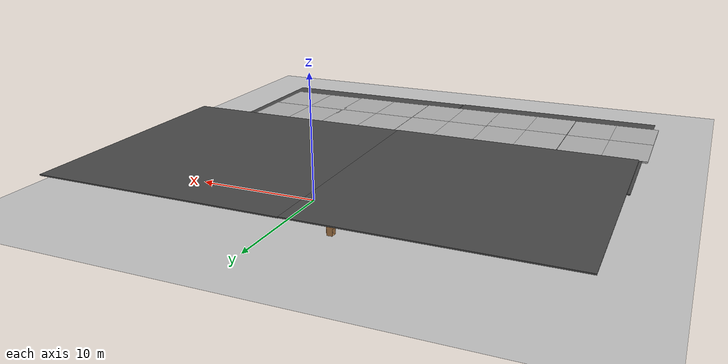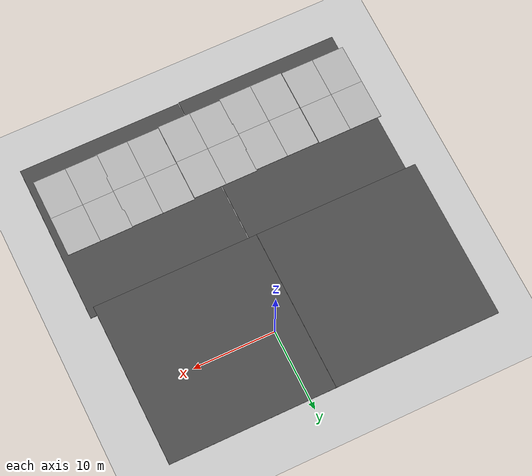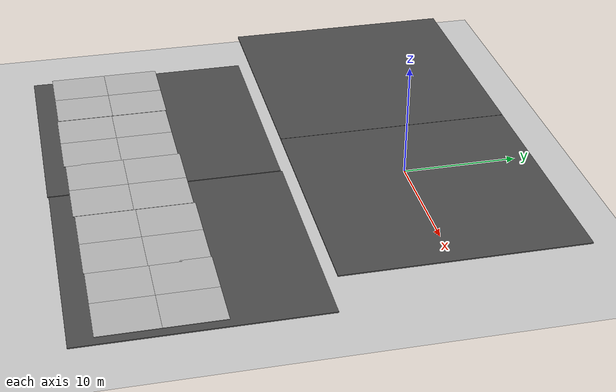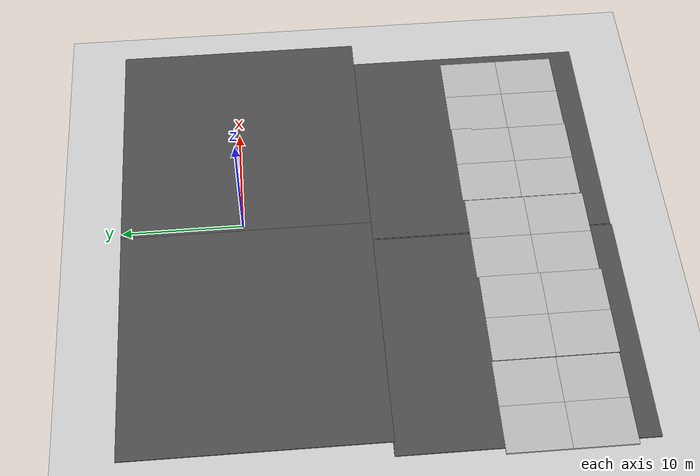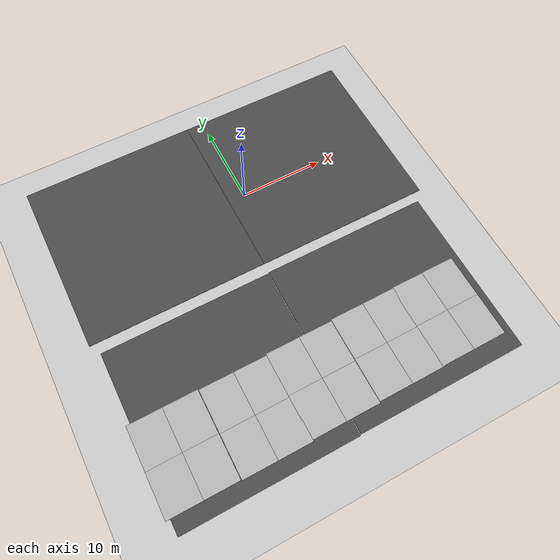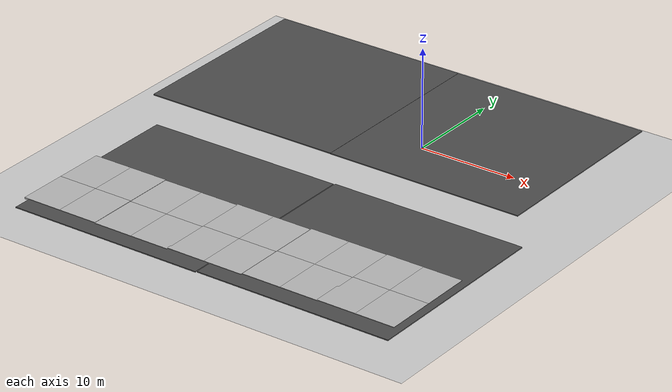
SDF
<sdf version="1.6">
 <world name="default">
  <light name="sun" type="directional">
   <pose>0 0 10 0 -0 0</pose>
   <diffuse>0.8 0.8 0.8 1</diffuse>
   <specular>0.2 0.2 0.2 1</specular>
   <attenuation>
    <range>1000</range>
    <constant>0.9</constant>
    <linear>0.01</linear>
    <quadratic>0.001</quadratic>
   </attenuation>
   <direction>-0.5 0.1 -0.9</direction>
  </light>
  <gravity>0 0 -9.8</gravity>
  <magnetic_field>6e-06 2.3e-05 -4.2e-05</magnetic_field>
  <atmosphere type="adiabatic"/>
  <physics name="default_physics" default="0" type="ode">
   <max_step_size>0.001</max_step_size>
   <real_time_factor>1</real_time_factor>
   <real_time_update_rate>1000</real_time_update_rate>
  </physics>
  <scene><ambient>1 1 1 1</ambient><background>0.7 0.7 0.7 1</background><shadows>1</shadows></scene>
  <spherical_coordinates>
   <surface_model>EARTH_WGS84</surface_model>
   <latitude_deg>0</latitude_deg>
   <longitude_deg>0</longitude_deg>
   <elevation>0</elevation>
   <heading_deg>0</heading_deg>
  </spherical_coordinates>
  <model name="ground_plane">
   <static>1</static>
   <link name="link">
    <collision name="collision">
     <geometry><plane><normal>0 0 1</normal><size>100 100</size></plane></geometry>
     <surface><friction><ode><mu>100</mu><mu2>50</mu2></ode></friction></surface>
    </collision>
    <visual name="visual">
     <cast_shadows>0</cast_shadows>
     <geometry><plane><normal>0 0 1</normal><size>100 100</size></plane></geometry>
     <material>
      <script><uri>file://media/materials/scripts/gazebo.material</uri><name>Gazebo/Grey</name></script>
     </material>
    </visual>
   </link>
   <pose>0.554406 1.95108 0 0 -0 0</pose>
  </model>
  <model name="table">
   <static>1</static>
   <link name="link">
    <collision name="surface">
     <pose>0 0 1 0 -0 0</pose>
     <geometry><box><size>1.5 0.8 0.03</size></box></geometry>
     <surface><friction><ode><mu>0.6</mu><mu2>0.6</mu2></ode></friction></surface>
    </collision>
    <visual name="visual1">
     <pose>0 0 1 0 -0 0</pose>
     <geometry><box><size>1.5 0.8 0.03</size></box></geometry>
     <material>
      <script><uri>file://media/materials/scripts/gazebo.material</uri><name>Gazebo/Wood</name></script>
     </material>
    </visual>
    <collision name="front_left_leg">
     <pose>0.68 0.38 0.5 0 -0 0</pose>
     <geometry><cylinder><radius>0.02</radius><length>1</length></cylinder></geometry>
    </collision>
    <visual name="front_left_leg">
     <pose>0.68 0.38 0.5 0 -0 0</pose>
     <geometry><cylinder><radius>0.02</radius><length>1</length></cylinder></geometry>
     <material>
      <script><uri>file://media/materials/scripts/gazebo.material</uri><name>Gazebo/Grey</name></script>
     </material>
    </visual>
    <collision name="front_right_leg">
     <pose>0.68 -0.38 0.5 0 -0 0</pose>
     <geometry><cylinder><radius>0.02</radius><length>1</length></cylinder></geometry>
    </collision>
    <visual name="front_right_leg">
     <pose>0.68 -0.38 0.5 0 -0 0</pose>
     <geometry><cylinder><radius>0.02</radius><length>1</length></cylinder></geometry>
     <material>
      <script><uri>file://media/materials/scripts/gazebo.material</uri><name>Gazebo/Grey</name></script>
     </material>
    </visual>
    <collision name="back_right_leg">
     <pose>-0.68 -0.38 0.5 0 -0 0</pose>
     <geometry><cylinder><radius>0.02</radius><length>1</length></cylinder></geometry>
    </collision>
    <visual name="back_right_leg">
     <pose>-0.68 -0.38 0.5 0 -0 0</pose>
     <geometry><cylinder><radius>0.02</radius><length>1</length></cylinder></geometry>
     <material>
      <script><uri>file://media/materials/scripts/gazebo.material</uri><name>Gazebo/Grey</name></script>
     </material>
    </visual>
    <collision name="back_left_leg">
     <pose>-0.68 0.38 0.5 0 -0 0</pose>
     <geometry><cylinder><radius>0.02</radius><length>1</length></cylinder></geometry>
    </collision>
    <visual name="back_left_leg">
     <pose>-0.68 0.38 0.5 0 -0 0</pose>
     <geometry><cylinder><radius>0.02</radius><length>1</length></cylinder></geometry>
     <material>
      <script><uri>file://media/materials/scripts/gazebo.material</uri><name>Gazebo/Grey</name></script>
     </material>
    </visual>
   </link>
   <pose>0.08848 3.30206 0 0 -0 0</pose>
  </model>
  <model name="cabinet">
   <static>1</static>
   <link name="cabinet_bottom_plate">
    <inertial>
     <pose>0 0 -1 0 -0 0</pose>
     <inertia><ixx>2.05</ixx><ixy>0</ixy><ixz>0</ixz><iyy>2.05</iyy><iyz>0</iyz><izz>2.05</izz></inertia>
     <mass>25</mass>
    </inertial>
    <collision name="cabinet_bottom_plate_geom">
     <pose>0 0 0.01 0 -0 0</pose>
     <geometry><box><size>0.45 0.45 0.02</size></box></geometry>
    </collision>
    <visual name="cabinet_bottom_plate_geom_visual">
     <pose>0 0 0.01 0 -0 0</pose>
     <geometry><box><size>0.45 0.45 0.02</size></box></geometry>
     <material>
      <script><uri>file://media/materials/scripts/gazebo.material</uri><name>Gazebo/Wood</name></script>
     </material>
    </visual>
    <collision name="cabinet_bottom_plate_geom_cabinet_back_plate">
     <pose>0.235 0 0.51 0 -0 0</pose>
     <geometry><box><size>0.02 0.45 1.02</size></box></geometry>
    </collision>
    <visual name="cabinet_bottom_plate_geom_cabinet_back_plate_visual">
     <pose>0.235 0 0.51 0 -0 0</pose>
     <geometry><box><size>0.02 0.45 1.02</size></box></geometry>
     <material>
      <script><uri>file://media/materials/scripts/gazebo.material</uri><name>Gazebo/Wood</name></script>
     </material>
    </visual>
    <collision name="cabinet_bottom_plate_geom_cabinet_left_plate">
     <pose>0 0.235 0.51 0 -0 0</pose>
     <geometry><box><size>0.45 0.02 1.02</size></box></geometry>
    </collision>
    <visual name="cabinet_bottom_plate_geom_cabinet_left_plate_visual">
     <pose>0 0.235 0.51 0 -0 0</pose>
     <geometry><box><size>0.45 0.02 1.02</size></box></geometry>
     <material>
      <script><uri>file://media/materials/scripts/gazebo.material</uri><name>Gazebo/Wood</name></script>
     </material>
    </visual>
    <collision name="cabinet_bottom_plate_geom_cabinet_middle_plate">
     <pose>0 0 0.51 0 -0 0</pose>
     <geometry><box><size>0.45 0.45 0.02</size></box></geometry>
    </collision>
    <visual name="cabinet_bottom_plate_geom_cabinet_middle_plate_visual">
     <pose>0 0 0.51 0 -0 0</pose>
     <geometry><box><size>0.45 0.45 0.02</size></box></geometry>
     <material>
      <script><uri>file://media/materials/scripts/gazebo.material</uri><name>Gazebo/Wood</name></script>
     </material>
    </visual>
    <collision name="cabinet_bottom_plate_geom_cabinet_right_plate">
     <pose>0 -0.235 0.51 0 -0 0</pose>
     <geometry><box><size>0.45 0.02 1.02</size></box></geometry>
    </collision>
    <visual name="cabinet_bottom_plate_geom_cabinet_right_plate_visual">
     <pose>0 -0.235 0.51 0 -0 0</pose>
     <geometry><box><size>0.45 0.02 1.02</size></box></geometry>
     <material>
      <script><uri>file://media/materials/scripts/gazebo.material</uri><name>Gazebo/Wood</name></script>
     </material>
    </visual>
    <collision name="cabinet_bottom_plate_geom_cabinet_top_plate">
     <pose>0 0 1.01 0 -0 0</pose>
     <geometry><box><size>0.45 0.45 0.02</size></box></geometry>
    </collision>
    <visual name="cabinet_bottom_plate_geom_cabinet_top_plate_visual">
     <pose>0 0 1.01 0 -0 0</pose>
     <geometry><box><size>0.45 0.45 0.02</size></box></geometry>
     <material>
      <script><uri>file://media/materials/scripts/gazebo.material</uri><name>Gazebo/Wood</name></script>
     </material>
    </visual>
   </link>
   <pose>-4.07897 5.06428 0 0 -0 0</pose>
  </model>
  <model name="cabinet_0">
   <static>1</static>
   <link name="cabinet_bottom_plate">
    <inertial>
     <pose>0 0 -1 0 -0 0</pose>
     <inertia><ixx>2.05</ixx><ixy>0</ixy><ixz>0</ixz><iyy>2.05</iyy><iyz>0</iyz><izz>2.05</izz></inertia>
     <mass>25</mass>
    </inertial>
    <collision name="cabinet_bottom_plate_geom">
     <pose>0 0 0.01 0 -0 0</pose>
     <geometry><box><size>0.45 0.45 0.02</size></box></geometry>
    </collision>
    <visual name="cabinet_bottom_plate_geom_visual">
     <pose>0 0 0.01 0 -0 0</pose>
     <geometry><box><size>0.45 0.45 0.02</size></box></geometry>
     <material>
      <script><uri>file://media/materials/scripts/gazebo.material</uri><name>Gazebo/Wood</name></script>
     </material>
    </visual>
    <collision name="cabinet_bottom_plate_geom_cabinet_back_plate">
     <pose>0.235 0 0.51 0 -0 0</pose>
     <geometry><box><size>0.02 0.45 1.02</size></box></geometry>
    </collision>
    <visual name="cabinet_bottom_plate_geom_cabinet_back_plate_visual">
     <pose>0.235 0 0.51 0 -0 0</pose>
     <geometry><box><size>0.02 0.45 1.02</size></box></geometry>
     <material>
      <script><uri>file://media/materials/scripts/gazebo.material</uri><name>Gazebo/Wood</name></script>
     </material>
    </visual>
    <collision name="cabinet_bottom_plate_geom_cabinet_left_plate">
     <pose>0 0.235 0.51 0 -0 0</pose>
     <geometry><box><size>0.45 0.02 1.02</size></box></geometry>
    </collision>
    <visual name="cabinet_bottom_plate_geom_cabinet_left_plate_visual">
     <pose>0 0.235 0.51 0 -0 0</pose>
     <geometry><box><size>0.45 0.02 1.02</size></box></geometry>
     <material>
      <script><uri>file://media/materials/scripts/gazebo.material</uri><name>Gazebo/Wood</name></script>
     </material>
    </visual>
    <collision name="cabinet_bottom_plate_geom_cabinet_middle_plate">
     <pose>0 0 0.51 0 -0 0</pose>
     <geometry><box><size>0.45 0.45 0.02</size></box></geometry>
    </collision>
    <visual name="cabinet_bottom_plate_geom_cabinet_middle_plate_visual">
     <pose>0 0 0.51 0 -0 0</pose>
     <geometry><box><size>0.45 0.45 0.02</size></box></geometry>
     <material>
      <script><uri>file://media/materials/scripts/gazebo.material</uri><name>Gazebo/Wood</name></script>
     </material>
    </visual>
    <collision name="cabinet_bottom_plate_geom_cabinet_right_plate">
     <pose>0 -0.235 0.51 0 -0 0</pose>
     <geometry><box><size>0.45 0.02 1.02</size></box></geometry>
    </collision>
    <visual name="cabinet_bottom_plate_geom_cabinet_right_plate_visual">
     <pose>0 -0.235 0.51 0 -0 0</pose>
     <geometry><box><size>0.45 0.02 1.02</size></box></geometry>
     <material>
      <script><uri>file://media/materials/scripts/gazebo.material</uri><name>Gazebo/Wood</name></script>
     </material>
    </visual>
    <collision name="cabinet_bottom_plate_geom_cabinet_top_plate">
     <pose>0 0 1.01 0 -0 0</pose>
     <geometry><box><size>0.45 0.45 0.02</size></box></geometry>
    </collision>
    <visual name="cabinet_bottom_plate_geom_cabinet_top_plate_visual">
     <pose>0 0 1.01 0 -0 0</pose>
     <geometry><box><size>0.45 0.45 0.02</size></box></geometry>
     <material>
      <script><uri>file://media/materials/scripts/gazebo.material</uri><name>Gazebo/Wood</name></script>
     </material>
    </visual>
   </link>
   <pose>-10.3859 1.46528 0 0 -0 0</pose>
  </model>
  <model name="cabinet_1">
   <static>1</static>
   <link name="cabinet_bottom_plate">
    <inertial>
     <pose>0 0 -1 0 -0 0</pose>
     <inertia><ixx>2.05</ixx><ixy>0</ixy><ixz>0</ixz><iyy>2.05</iyy><iyz>0</iyz><izz>2.05</izz></inertia>
     <mass>25</mass>
    </inertial>
    <collision name="cabinet_bottom_plate_geom">
     <pose>0 0 0.01 0 -0 0</pose>
     <geometry><box><size>0.45 0.45 0.02</size></box></geometry>
    </collision>
    <visual name="cabinet_bottom_plate_geom_visual">
     <pose>0 0 0.01 0 -0 0</pose>
     <geometry><box><size>0.45 0.45 0.02</size></box></geometry>
     <material>
      <script><uri>file://media/materials/scripts/gazebo.material</uri><name>Gazebo/Wood</name></script>
     </material>
    </visual>
    <collision name="cabinet_bottom_plate_geom_cabinet_back_plate">
     <pose>0.235 0 0.51 0 -0 0</pose>
     <geometry><box><size>0.02 0.45 1.02</size></box></geometry>
    </collision>
    <visual name="cabinet_bottom_plate_geom_cabinet_back_plate_visual">
     <pose>0.235 0 0.51 0 -0 0</pose>
     <geometry><box><size>0.02 0.45 1.02</size></box></geometry>
     <material>
      <script><uri>file://media/materials/scripts/gazebo.material</uri><name>Gazebo/Wood</name></script>
     </material>
    </visual>
    <collision name="cabinet_bottom_plate_geom_cabinet_left_plate">
     <pose>0 0.235 0.51 0 -0 0</pose>
     <geometry><box><size>0.45 0.02 1.02</size></box></geometry>
    </collision>
    <visual name="cabinet_bottom_plate_geom_cabinet_left_plate_visual">
     <pose>0 0.235 0.51 0 -0 0</pose>
     <geometry><box><size>0.45 0.02 1.02</size></box></geometry>
     <material>
      <script><uri>file://media/materials/scripts/gazebo.material</uri><name>Gazebo/Wood</name></script>
     </material>
    </visual>
    <collision name="cabinet_bottom_plate_geom_cabinet_middle_plate">
     <pose>0 0 0.51 0 -0 0</pose>
     <geometry><box><size>0.45 0.45 0.02</size></box></geometry>
    </collision>
    <visual name="cabinet_bottom_plate_geom_cabinet_middle_plate_visual">
     <pose>0 0 0.51 0 -0 0</pose>
     <geometry><box><size>0.45 0.45 0.02</size></box></geometry>
     <material>
      <script><uri>file://media/materials/scripts/gazebo.material</uri><name>Gazebo/Wood</name></script>
     </material>
    </visual>
    <collision name="cabinet_bottom_plate_geom_cabinet_right_plate">
     <pose>0 -0.235 0.51 0 -0 0</pose>
     <geometry><box><size>0.45 0.02 1.02</size></box></geometry>
    </collision>
    <visual name="cabinet_bottom_plate_geom_cabinet_right_plate_visual">
     <pose>0 -0.235 0.51 0 -0 0</pose>
     <geometry><box><size>0.45 0.02 1.02</size></box></geometry>
     <material>
      <script><uri>file://media/materials/scripts/gazebo.material</uri><name>Gazebo/Wood</name></script>
     </material>
    </visual>
    <collision name="cabinet_bottom_plate_geom_cabinet_top_plate">
     <pose>0 0 1.01 0 -0 0</pose>
     <geometry><box><size>0.45 0.45 0.02</size></box></geometry>
    </collision>
    <visual name="cabinet_bottom_plate_geom_cabinet_top_plate_visual">
     <pose>0 0 1.01 0 -0 0</pose>
     <geometry><box><size>0.45 0.45 0.02</size></box></geometry>
     <material>
      <script><uri>file://media/materials/scripts/gazebo.material</uri><name>Gazebo/Wood</name></script>
     </material>
    </visual>
   </link>
   <pose>-5.9696 1.51927 0 0 -0 0</pose>
  </model>
  <model name="bookshelf">
   <static>1</static>
   <link name="link">
    <inertial><mass>1</mass></inertial>
    <collision name="back">
     <pose>0 0.005 0.6 0 -0 0</pose>
     <geometry><box><size>0.9 0.01 1.2</size></box></geometry>
    </collision>
    <visual name="visual1">
     <pose>0 0.005 0.6 0 -0 0</pose>
     <geometry><box><size>0.9 0.01 1.2</size></box></geometry>
     <material>
      <script><uri>file://media/materials/scripts/gazebo.material</uri><name>Gazebo/Wood</name></script>
     </material>
    </visual>
    <collision name="left_side">
     <pose>0.45 -0.195 0.6 0 -0 0</pose>
     <geometry><box><size>0.02 0.4 1.2</size></box></geometry>
    </collision>
    <visual name="visual2">
     <pose>0.45 -0.195 0.6 0 -0 0</pose>
     <geometry><box><size>0.02 0.4 1.2</size></box></geometry>
     <material>
      <script><uri>file://media/materials/scripts/gazebo.material</uri><name>Gazebo/Wood</name></script>
     </material>
    </visual>
    <collision name="right_side">
     <pose>-0.45 -0.195 0.6 0 -0 0</pose>
     <geometry><box><size>0.02 0.4 1.2</size></box></geometry>
    </collision>
    <visual name="visual3">
     <pose>-0.45 -0.195 0.6 0 -0 0</pose>
     <geometry><box><size>0.02 0.4 1.2</size></box></geometry>
     <material>
      <script><uri>file://media/materials/scripts/gazebo.material</uri><name>Gazebo/Wood</name></script>
     </material>
    </visual>
    <collision name="bottom">
     <pose>0 -0.195 0.03 0 -0 0</pose>
     <geometry><box><size>0.88 0.4 0.06</size></box></geometry>
    </collision>
    <visual name="visual4">
     <pose>0 -0.195 0.03 0 -0 0</pose>
     <geometry><box><size>0.88 0.4 0.06</size></box></geometry>
     <material>
      <script><uri>file://media/materials/scripts/gazebo.material</uri><name>Gazebo/Wood</name></script>
     </material>
    </visual>
    <collision name="top">
     <pose>0 -0.195 1.19 0 -0 0</pose>
     <geometry><box><size>0.88 0.4 0.02</size></box></geometry>
    </collision>
    <visual name="visual5">
     <pose>0 -0.195 1.19 0 -0 0</pose>
     <geometry><box><size>0.88 0.4 0.02</size></box></geometry>
     <material>
      <script><uri>file://media/materials/scripts/gazebo.material</uri><name>Gazebo/Wood</name></script>
     </material>
    </visual>
    <collision name="low_shelf">
     <pose>0 -0.195 0.43 0 -0 0</pose>
     <geometry><box><size>0.88 0.4 0.02</size></box></geometry>
    </collision>
    <visual name="visual6">
     <pose>0 -0.195 0.43 0 -0 0</pose>
     <geometry><box><size>0.88 0.4 0.02</size></box></geometry>
     <material>
      <script><uri>file://media/materials/scripts/gazebo.material</uri><name>Gazebo/Wood</name></script>
     </material>
    </visual>
    <collision name="high_shelf">
     <pose>0 -0.195 0.8 0 -0 0</pose>
     <geometry><box><size>0.88 0.4 0.02</size></box></geometry>
    </collision>
    <visual name="visual7">
     <pose>0 -0.195 0.8 0 -0 0</pose>
     <geometry><box><size>0.88 0.4 0.02</size></box></geometry>
     <material>
      <script><uri>file://media/materials/scripts/gazebo.material</uri><name>Gazebo/Wood</name></script>
     </material>
    </visual>
   </link>
   <pose>-13.6427 1.21037 0 0 -0 3.1415</pose>
  </model>
  <model name="bookshelf_0">
   <static>1</static>
   <link name="link">
    <inertial><mass>1</mass></inertial>
    <collision name="back">
     <pose>0 0.005 0.6 0 -0 0</pose>
     <geometry><box><size>0.9 0.01 1.2</size></box></geometry>
    </collision>
    <visual name="visual1">
     <pose>0 0.005 0.6 0 -0 0</pose>
     <geometry><box><size>0.9 0.01 1.2</size></box></geometry>
     <material>
      <script><uri>file://media/materials/scripts/gazebo.material</uri><name>Gazebo/Wood</name></script>
     </material>
    </visual>
    <collision name="left_side">
     <pose>0.45 -0.195 0.6 0 -0 0</pose>
     <geometry><box><size>0.02 0.4 1.2</size></box></geometry>
    </collision>
    <visual name="visual2">
     <pose>0.45 -0.195 0.6 0 -0 0</pose>
     <geometry><box><size>0.02 0.4 1.2</size></box></geometry>
     <material>
      <script><uri>file://media/materials/scripts/gazebo.material</uri><name>Gazebo/Wood</name></script>
     </material>
    </visual>
    <collision name="right_side">
     <pose>-0.45 -0.195 0.6 0 -0 0</pose>
     <geometry><box><size>0.02 0.4 1.2</size></box></geometry>
    </collision>
    <visual name="visual3">
     <pose>-0.45 -0.195 0.6 0 -0 0</pose>
     <geometry><box><size>0.02 0.4 1.2</size></box></geometry>
     <material>
      <script><uri>file://media/materials/scripts/gazebo.material</uri><name>Gazebo/Wood</name></script>
     </material>
    </visual>
    <collision name="bottom">
     <pose>0 -0.195 0.03 0 -0 0</pose>
     <geometry><box><size>0.88 0.4 0.06</size></box></geometry>
    </collision>
    <visual name="visual4">
     <pose>0 -0.195 0.03 0 -0 0</pose>
     <geometry><box><size>0.88 0.4 0.06</size></box></geometry>
     <material>
      <script><uri>file://media/materials/scripts/gazebo.material</uri><name>Gazebo/Wood</name></script>
     </material>
    </visual>
    <collision name="top">
     <pose>0 -0.195 1.19 0 -0 0</pose>
     <geometry><box><size>0.88 0.4 0.02</size></box></geometry>
    </collision>
    <visual name="visual5">
     <pose>0 -0.195 1.19 0 -0 0</pose>
     <geometry><box><size>0.88 0.4 0.02</size></box></geometry>
     <material>
      <script><uri>file://media/materials/scripts/gazebo.material</uri><name>Gazebo/Wood</name></script>
     </material>
    </visual>
    <collision name="low_shelf">
     <pose>0 -0.195 0.43 0 -0 0</pose>
     <geometry><box><size>0.88 0.4 0.02</size></box></geometry>
    </collision>
    <visual name="visual6">
     <pose>0 -0.195 0.43 0 -0 0</pose>
     <geometry><box><size>0.88 0.4 0.02</size></box></geometry>
     <material>
      <script><uri>file://media/materials/scripts/gazebo.material</uri><name>Gazebo/Wood</name></script>
     </material>
    </visual>
    <collision name="high_shelf">
     <pose>0 -0.195 0.8 0 -0 0</pose>
     <geometry><box><size>0.88 0.4 0.02</size></box></geometry>
    </collision>
    <visual name="visual7">
     <pose>0 -0.195 0.8 0 -0 0</pose>
     <geometry><box><size>0.88 0.4 0.02</size></box></geometry>
     <material>
      <script><uri>file://media/materials/scripts/gazebo.material</uri><name>Gazebo/Wood</name></script>
     </material>
    </visual>
   </link>
   <pose>-14.562 1.20759 0 0 -0 3.1415</pose>
  </model>
  <model name="asphalt_plane">
   <static>1</static>
   <link name="link">
    <collision name="collision"><geometry><box><size>20 20 0.1</size></box></geometry></collision>
    <visual name="visual">
     <cast_shadows>0</cast_shadows>
     <geometry><box><size>20 20 0.1</size></box></geometry>
     <material>
      <script>
       <uri>model://asphalt_plane/materials/scripts</uri>
       <uri>model://asphalt_plane/materials/textures</uri>
       <name>vrc/asphalt</name>
      </script>
     </material>
    </visual>
   </link>
   <pose>-12.297 -20.4342 0 0 -0 0</pose>
  </model>
  <model name="asphalt_plane_0">
   <static>1</static>
   <link name="link">
    <collision name="collision"><geometry><box><size>20 20 0.1</size></box></geometry></collision>
    <visual name="visual">
     <cast_shadows>0</cast_shadows>
     <geometry><box><size>20 20 0.1</size></box></geometry>
     <material>
      <script>
       <uri>model://asphalt_plane/materials/scripts</uri>
       <uri>model://asphalt_plane/materials/textures</uri>
       <name>vrc/asphalt</name>
      </script>
     </material>
    </visual>
   </link>
   <pose>7.81212 -20.3317 0 0 -0 0</pose>
  </model>
  <model name="mud_box">
   <static>1</static>
   <link name="link">
    <collision name="collision"><geometry><box><size>8 10 0.2</size></box></geometry></collision>
    <visual name="visual_1">
     <pose>-2 2.5 0 0 -0 0</pose>
     <cast_shadows>0</cast_shadows>
     <geometry><box><size>4 5 0.2</size></box></geometry>
     <material>
      <script>
       <uri>model://mud_box/materials/scripts</uri>
       <uri>model://mud_box/materials/textures</uri>
       <name>vrc/mud</name>
      </script>
     </material>
    </visual>
    <visual name="visual_2">
     <pose>2 2.5 0 0 -0 0</pose>
     <cast_shadows>0</cast_shadows>
     <geometry><box><size>4 5 0.2</size></box></geometry>
     <material>
      <script>
       <uri>model://mud_box/materials/scripts</uri>
       <uri>model://mud_box/materials/textures</uri>
       <name>vrc/mud</name>
      </script>
     </material>
    </visual>
    <visual name="visual_3">
     <pose>2 -2.5 0 0 -0 0</pose>
     <cast_shadows>0</cast_shadows>
     <geometry><box><size>4 5 0.2</size></box></geometry>
     <material>
      <script>
       <uri>model://mud_box/materials/scripts</uri>
       <uri>model://mud_box/materials/textures</uri>
       <name>vrc/mud</name>
      </script>
     </material>
    </visual>
    <visual name="visual_4">
     <pose>-2 -2.5 0 0 -0 0</pose>
     <cast_shadows>0</cast_shadows>
     <geometry><box><size>4 5 0.2</size></box></geometry>
     <material>
      <script>
       <uri>model://mud_box/materials/scripts</uri>
       <uri>model://mud_box/materials/textures</uri>
       <name>vrc/mud</name>
      </script>
     </material>
    </visual>
   </link>
   <pose>-18.7892 -23.6483 0 0 -0 0</pose>
  </model>
  <model name="mud_box_0">
   <static>1</static>
   <link name="link">
    <collision name="collision"><geometry><box><size>8 10 0.2</size></box></geometry></collision>
    <visual name="visual_1">
     <pose>-2 2.5 0 0 -0 0</pose>
     <cast_shadows>0</cast_shadows>
     <geometry><box><size>4 5 0.2</size></box></geometry>
     <material>
      <script>
       <uri>model://mud_box/materials/scripts</uri>
       <uri>model://mud_box/materials/textures</uri>
       <name>vrc/mud</name>
      </script>
     </material>
    </visual>
    <visual name="visual_2">
     <pose>2 2.5 0 0 -0 0</pose>
     <cast_shadows>0</cast_shadows>
     <geometry><box><size>4 5 0.2</size></box></geometry>
     <material>
      <script>
       <uri>model://mud_box/materials/scripts</uri>
       <uri>model://mud_box/materials/textures</uri>
       <name>vrc/mud</name>
      </script>
     </material>
    </visual>
    <visual name="visual_3">
     <pose>2 -2.5 0 0 -0 0</pose>
     <cast_shadows>0</cast_shadows>
     <geometry><box><size>4 5 0.2</size></box></geometry>
     <material>
      <script>
       <uri>model://mud_box/materials/scripts</uri>
       <uri>model://mud_box/materials/textures</uri>
       <name>vrc/mud</name>
      </script>
     </material>
    </visual>
    <visual name="visual_4">
     <pose>-2 -2.5 0 0 -0 0</pose>
     <cast_shadows>0</cast_shadows>
     <geometry><box><size>4 5 0.2</size></box></geometry>
     <material>
      <script>
       <uri>model://mud_box/materials/scripts</uri>
       <uri>model://mud_box/materials/textures</uri>
       <name>vrc/mud</name>
      </script>
     </material>
    </visual>
   </link>
   <pose>-10.7373 -23.7291 0 0 -0 0</pose>
  </model>
  <model name="mud_box_1">
   <static>1</static>
   <link name="link">
    <collision name="collision"><geometry><box><size>8 10 0.2</size></box></geometry></collision>
    <visual name="visual_1">
     <pose>-2 2.5 0 0 -0 0</pose>
     <cast_shadows>0</cast_shadows>
     <geometry><box><size>4 5 0.2</size></box></geometry>
     <material>
      <script>
       <uri>model://mud_box/materials/scripts</uri>
       <uri>model://mud_box/materials/textures</uri>
       <name>vrc/mud</name>
      </script>
     </material>
    </visual>
    <visual name="visual_2">
     <pose>2 2.5 0 0 -0 0</pose>
     <cast_shadows>0</cast_shadows>
     <geometry><box><size>4 5 0.2</size></box></geometry>
     <material>
      <script>
       <uri>model://mud_box/materials/scripts</uri>
       <uri>model://mud_box/materials/textures</uri>
       <name>vrc/mud</name>
      </script>
     </material>
    </visual>
    <visual name="visual_3">
     <pose>2 -2.5 0 0 -0 0</pose>
     <cast_shadows>0</cast_shadows>
     <geometry><box><size>4 5 0.2</size></box></geometry>
     <material>
      <script>
       <uri>model://mud_box/materials/scripts</uri>
       <uri>model://mud_box/materials/textures</uri>
       <name>vrc/mud</name>
      </script>
     </material>
    </visual>
    <visual name="visual_4">
     <pose>-2 -2.5 0 0 -0 0</pose>
     <cast_shadows>0</cast_shadows>
     <geometry><box><size>4 5 0.2</size></box></geometry>
     <material>
      <script>
       <uri>model://mud_box/materials/scripts</uri>
       <uri>model://mud_box/materials/textures</uri>
       <name>vrc/mud</name>
      </script>
     </material>
    </visual>
   </link>
   <pose>-2.82932 -23.5784 0 0 -0 0</pose>
  </model>
  <model name="mud_box_2">
   <static>1</static>
   <link name="link">
    <collision name="collision"><geometry><box><size>8 10 0.2</size></box></geometry></collision>
    <visual name="visual_1">
     <pose>-2 2.5 0 0 -0 0</pose>
     <cast_shadows>0</cast_shadows>
     <geometry><box><size>4 5 0.2</size></box></geometry>
     <material>
      <script>
       <uri>model://mud_box/materials/scripts</uri>
       <uri>model://mud_box/materials/textures</uri>
       <name>vrc/mud</name>
      </script>
     </material>
    </visual>
    <visual name="visual_2">
     <pose>2 2.5 0 0 -0 0</pose>
     <cast_shadows>0</cast_shadows>
     <geometry><box><size>4 5 0.2</size></box></geometry>
     <material>
      <script>
       <uri>model://mud_box/materials/scripts</uri>
       <uri>model://mud_box/materials/textures</uri>
       <name>vrc/mud</name>
      </script>
     </material>
    </visual>
    <visual name="visual_3">
     <pose>2 -2.5 0 0 -0 0</pose>
     <cast_shadows>0</cast_shadows>
     <geometry><box><size>4 5 0.2</size></box></geometry>
     <material>
      <script>
       <uri>model://mud_box/materials/scripts</uri>
       <uri>model://mud_box/materials/textures</uri>
       <name>vrc/mud</name>
      </script>
     </material>
    </visual>
    <visual name="visual_4">
     <pose>-2 -2.5 0 0 -0 0</pose>
     <cast_shadows>0</cast_shadows>
     <geometry><box><size>4 5 0.2</size></box></geometry>
     <material>
      <script>
       <uri>model://mud_box/materials/scripts</uri>
       <uri>model://mud_box/materials/textures</uri>
       <name>vrc/mud</name>
      </script>
     </material>
    </visual>
   </link>
   <pose>5.2063 -23.434 0 0 -0 0</pose>
  </model>
  <model name="mud_box_3">
   <static>1</static>
   <link name="link">
    <collision name="collision"><geometry><box><size>8 10 0.2</size></box></geometry></collision>
    <visual name="visual_1">
     <pose>-2 2.5 0 0 -0 0</pose>
     <cast_shadows>0</cast_shadows>
     <geometry><box><size>4 5 0.2</size></box></geometry>
     <material>
      <script>
       <uri>model://mud_box/materials/scripts</uri>
       <uri>model://mud_box/materials/textures</uri>
       <name>vrc/mud</name>
      </script>
     </material>
    </visual>
    <visual name="visual_2">
     <pose>2 2.5 0 0 -0 0</pose>
     <cast_shadows>0</cast_shadows>
     <geometry><box><size>4 5 0.2</size></box></geometry>
     <material>
      <script>
       <uri>model://mud_box/materials/scripts</uri>
       <uri>model://mud_box/materials/textures</uri>
       <name>vrc/mud</name>
      </script>
     </material>
    </visual>
    <visual name="visual_3">
     <pose>2 -2.5 0 0 -0 0</pose>
     <cast_shadows>0</cast_shadows>
     <geometry><box><size>4 5 0.2</size></box></geometry>
     <material>
      <script>
       <uri>model://mud_box/materials/scripts</uri>
       <uri>model://mud_box/materials/textures</uri>
       <name>vrc/mud</name>
      </script>
     </material>
    </visual>
    <visual name="visual_4">
     <pose>-2 -2.5 0 0 -0 0</pose>
     <cast_shadows>0</cast_shadows>
     <geometry><box><size>4 5 0.2</size></box></geometry>
     <material>
      <script>
       <uri>model://mud_box/materials/scripts</uri>
       <uri>model://mud_box/materials/textures</uri>
       <name>vrc/mud</name>
      </script>
     </material>
    </visual>
   </link>
   <pose>13.0295 -23.3639 0 0 -0 0</pose>
  </model>
  <light name="user_directional_light_0" type="directional">
   <pose>-5.65615 -18.2189 1 0 -0 0</pose>
   <diffuse>0.5 0.5 0.5 1</diffuse>
   <specular>0.1 0.1 0.1 1</specular>
   <direction>0.1 0.1 -0.9</direction>
   <attenuation>
    <range>20</range>
    <constant>0.5</constant>
    <linear>0.01</linear>
    <quadratic>0.001</quadratic>
   </attenuation>
  </light>
  <light name="user_directional_light_1" type="directional">
   <pose>8.93418 -19.7226 1 0 -0 0</pose>
   <diffuse>0.5 0.5 0.5 1</diffuse>
   <specular>0.1 0.1 0.1 1</specular>
   <direction>0.1 0.1 -0.9</direction>
   <attenuation>
    <range>20</range>
    <constant>0.5</constant>
    <linear>0.01</linear>
    <quadratic>0.001</quadratic>
   </attenuation>
  </light>
  <model name="asphalt_plane_1">
   <static>1</static>
   <link name="link">
    <collision name="collision"><geometry><box><size>20 20 0.1</size></box></geometry></collision>
    <visual name="visual">
     <cast_shadows>0</cast_shadows>
     <geometry><box><size>20 20 0.1</size></box></geometry>
     <material>
      <script>
       <uri>model://asphalt_plane/materials/scripts</uri>
       <uri>model://asphalt_plane/materials/textures</uri>
       <name>vrc/asphalt</name>
      </script>
     </material>
    </visual>
   </link>
   <pose>-12.6993 -0.347478 2.93811 0 -0 0</pose>
  </model>
  <model name="asphalt_plane_2">
   <static>1</static>
   <link name="link">
    <collision name="collision"><geometry><box><size>20 20 0.1</size></box></geometry></collision>
    <visual name="visual">
     <cast_shadows>0</cast_shadows>
     <geometry><box><size>20 20 0.1</size></box></geometry>
     <material>
      <script>
       <uri>model://asphalt_plane/materials/scripts</uri>
       <uri>model://asphalt_plane/materials/textures</uri>
       <name>vrc/asphalt</name>
      </script>
     </material>
    </visual>
   </link>
   <pose>7.27509 -0.345628 2.91693 0 -0 0</pose>
  </model>
 </world>
</sdf>
